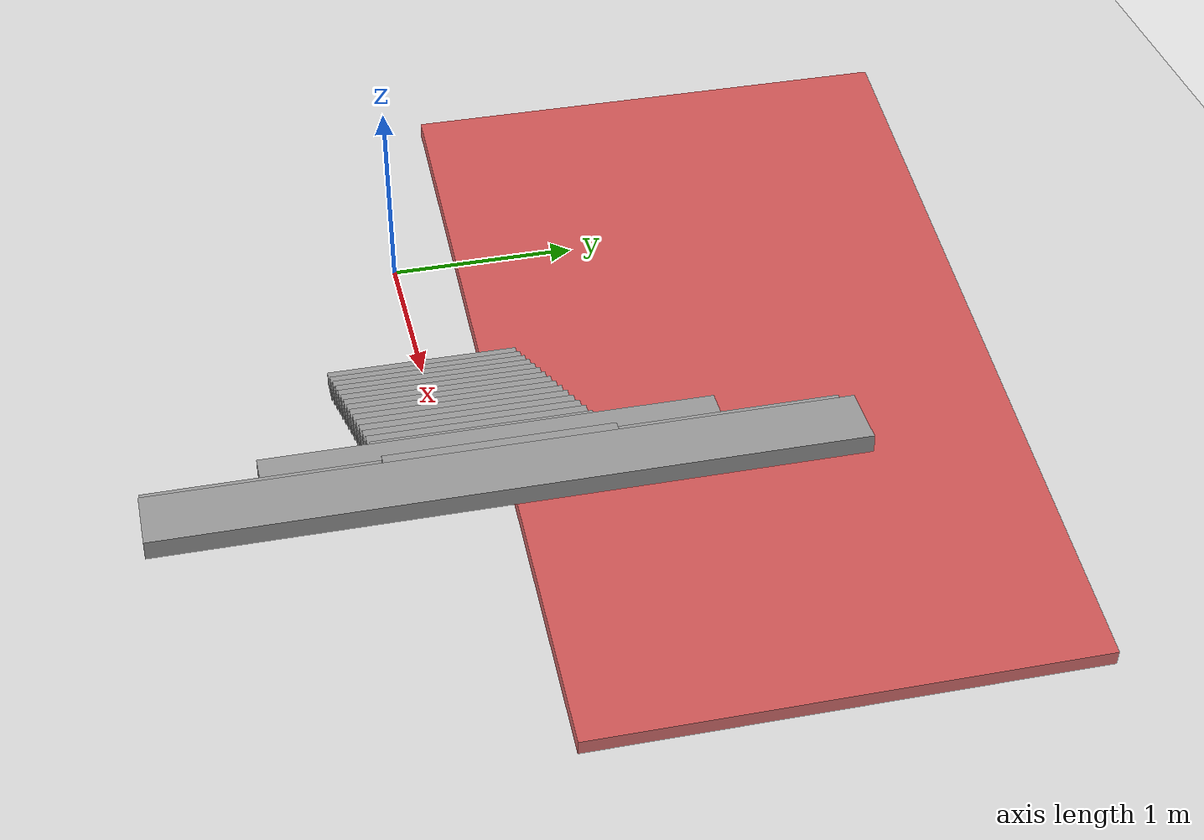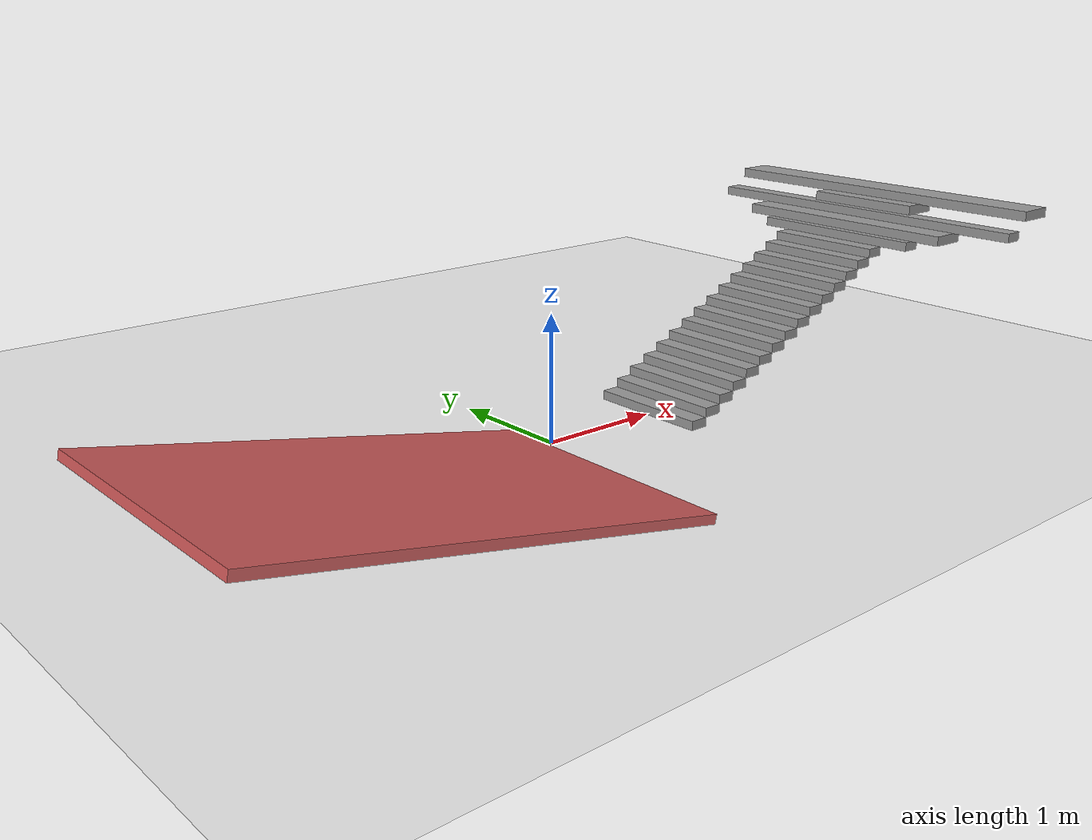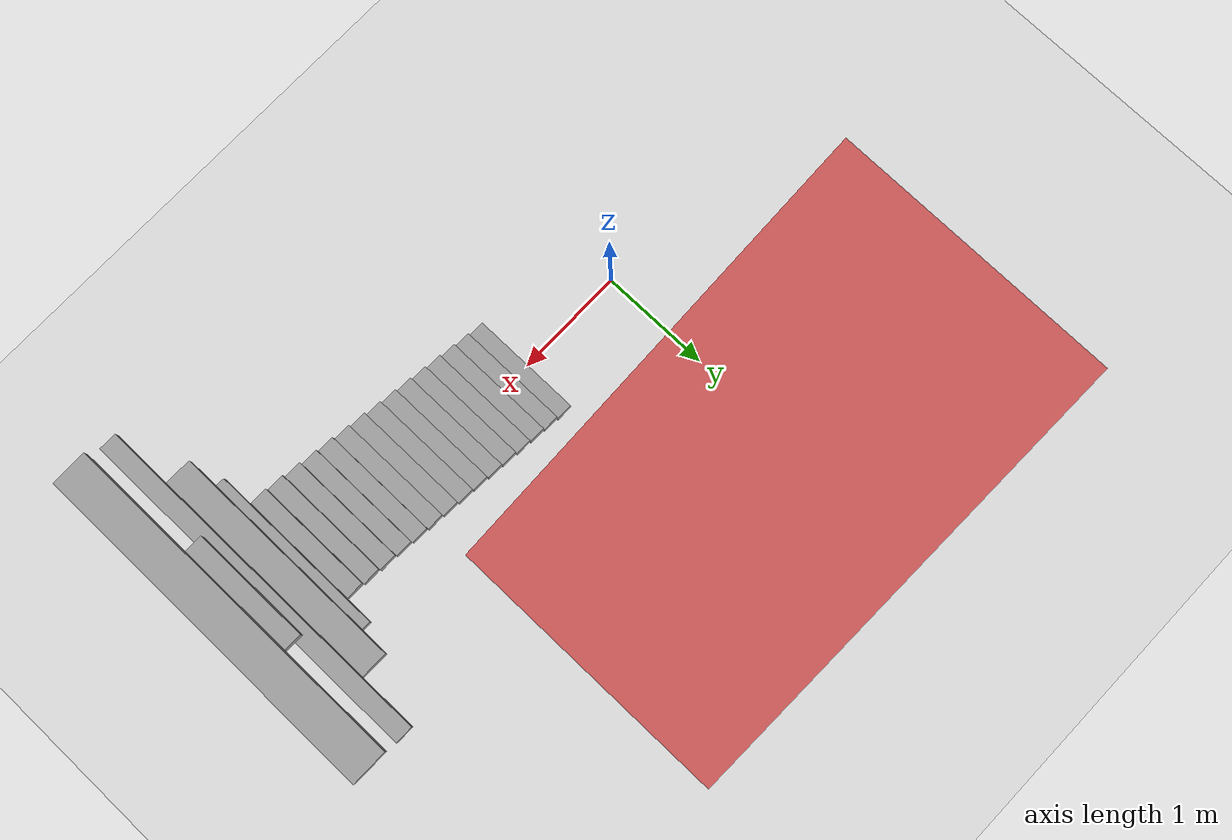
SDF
<sdf version="1.7">
 <world name="default">
  <light name="sun" type="directional">
   <pose>0 0 10 0 -0 0</pose>
   <diffuse>0.8 0.8 0.8 1</diffuse>
   <specular>0.2 0.2 0.2 1</specular>
   <attenuation>
    <range>1000</range>
    <constant>0.9</constant>
    <linear>0.01</linear>
    <quadratic>0.001</quadratic>
   </attenuation>
   <direction>-0.5 0.1 -0.9</direction>
   <spot><inner_angle>0</inner_angle><outer_angle>0</outer_angle><falloff>0</falloff></spot>
  </light>
  <model name="ground_plane">
   <static>1</static>
   <link name="link">
    <collision name="collision">
     <geometry><plane><normal>0 0 1</normal><size>100 100</size></plane></geometry>
     <surface>
      <contact><collide_bitmask>65535</collide_bitmask></contact>
      <friction><ode><mu>100</mu><mu2>50</mu2></ode></friction>
     </surface>
    </collision>
    <visual name="visual">
     <cast_shadows>0</cast_shadows>
     <geometry><plane><normal>0 0 1</normal><size>100 100</size></plane></geometry>
     <material>
      <script><uri>file://media/materials/scripts/gazebo.material</uri><name>Gazebo/Grey</name></script>
     </material>
    </visual>
   </link>
  </model>
  <gravity>0 0 -9.8</gravity>
  <magnetic_field>6e-06 2.3e-05 -4.2e-05</magnetic_field>
  <atmosphere type="adiabatic"/>
  <physics type="ode">
   <max_step_size>0.001</max_step_size>
   <real_time_factor>1</real_time_factor>
   <real_time_update_rate>1000</real_time_update_rate>
  </physics>
  <scene><ambient>0.4 0.4 0.4 1</ambient><background>0.7 0.7 0.7 1</background><shadows>1</shadows></scene>
  <spherical_coordinates>
   <surface_model>EARTH_WGS84</surface_model>
   <latitude_deg>0</latitude_deg>
   <longitude_deg>0</longitude_deg>
   <elevation>0</elevation>
   <heading_deg>0</heading_deg>
  </spherical_coordinates>
  <model name="stairs_7.5x15">
   <pose>2.5 -0 0 0 -0 0</pose>
   <link name="Stairs_1">
    <visual name="Stairs_1_Visual_0">
     <pose>-1.425 -0 0.0375 0 -0 1.5708</pose>
     <geometry><box><size>1 0.15 0.075</size></box></geometry>
     <material>
      <script><uri>file://media/materials/scripts/gazebo.material</uri><name>Gazebo/Grey</name></script>
      <ambient>1 1 1 1</ambient>
     </material>
     <meta><layer>0</layer></meta>
    </visual>
    <collision name="Stairs_1_Collision_0">
     <geometry><box><size>1 0.15 0.075</size></box></geometry>
     <pose>-1.425 -0 0.0375 0 -0 1.5708</pose>
    </collision>
    <visual name="Stairs_1_Visual_1">
     <pose>-1.275 -0 0.1125 0 -0 1.5708</pose>
     <geometry><box><size>1 0.15 0.075</size></box></geometry>
     <material>
      <script><uri>file://media/materials/scripts/gazebo.material</uri><name>Gazebo/Grey</name></script>
      <ambient>1 1 1 1</ambient>
     </material>
     <meta><layer>0</layer></meta>
    </visual>
    <collision name="Stairs_1_Collision_1">
     <geometry><box><size>1 0.15 0.075</size></box></geometry>
     <pose>-1.275 -0 0.1125 0 -0 1.5708</pose>
    </collision>
    <visual name="Stairs_1_Visual_2">
     <pose>-1.125 -0 0.1875 0 -0 1.5708</pose>
     <geometry><box><size>1 0.15 0.075</size></box></geometry>
     <material>
      <script><uri>file://media/materials/scripts/gazebo.material</uri><name>Gazebo/Grey</name></script>
      <ambient>1 1 1 1</ambient>
     </material>
     <meta><layer>0</layer></meta>
    </visual>
    <collision name="Stairs_1_Collision_2">
     <geometry><box><size>1 0.15 0.075</size></box></geometry>
     <pose>-1.125 -0 0.1875 0 -0 1.5708</pose>
    </collision>
    <visual name="Stairs_1_Visual_3">
     <pose>-0.975 -0 0.2625 0 -0 1.5708</pose>
     <geometry><box><size>1 0.15 0.075</size></box></geometry>
     <material>
      <script><uri>file://media/materials/scripts/gazebo.material</uri><name>Gazebo/Grey</name></script>
      <ambient>1 1 1 1</ambient>
     </material>
     <meta><layer>0</layer></meta>
    </visual>
    <collision name="Stairs_1_Collision_3">
     <geometry><box><size>1 0.15 0.075</size></box></geometry>
     <pose>-0.975 -0 0.2625 0 -0 1.5708</pose>
    </collision>
    <visual name="Stairs_1_Visual_4">
     <pose>-0.825 -0 0.3375 0 -0 1.5708</pose>
     <geometry><box><size>1 0.15 0.075</size></box></geometry>
     <material>
      <script><uri>file://media/materials/scripts/gazebo.material</uri><name>Gazebo/Grey</name></script>
      <ambient>1 1 1 1</ambient>
     </material>
     <meta><layer>0</layer></meta>
    </visual>
    <collision name="Stairs_1_Collision_4">
     <geometry><box><size>1 0.15 0.075</size></box></geometry>
     <pose>-0.825 -0 0.3375 0 -0 1.5708</pose>
    </collision>
    <visual name="Stairs_1_Visual_5">
     <pose>-0.675 -0 0.4125 0 -0 1.5708</pose>
     <geometry><box><size>1 0.15 0.075</size></box></geometry>
     <material>
      <script><uri>file://media/materials/scripts/gazebo.material</uri><name>Gazebo/Grey</name></script>
      <ambient>1 1 1 1</ambient>
     </material>
     <meta><layer>0</layer></meta>
    </visual>
    <collision name="Stairs_1_Collision_5">
     <geometry><box><size>1 0.15 0.075</size></box></geometry>
     <pose>-0.675 -0 0.4125 0 -0 1.5708</pose>
    </collision>
    <visual name="Stairs_1_Visual_6">
     <pose>-0.525 -0 0.4875 0 -0 1.5708</pose>
     <geometry><box><size>1 0.15 0.075</size></box></geometry>
     <material>
      <script><uri>file://media/materials/scripts/gazebo.material</uri><name>Gazebo/Grey</name></script>
      <ambient>1 1 1 1</ambient>
     </material>
     <meta><layer>0</layer></meta>
    </visual>
    <collision name="Stairs_1_Collision_6">
     <geometry><box><size>1 0.15 0.075</size></box></geometry>
     <pose>-0.525 -0 0.4875 0 -0 1.5708</pose>
    </collision>
    <visual name="Stairs_1_Visual_7">
     <pose>-0.375 -0 0.5625 0 -0 1.5708</pose>
     <geometry><box><size>1 0.15 0.075</size></box></geometry>
     <material>
      <script><uri>file://media/materials/scripts/gazebo.material</uri><name>Gazebo/Grey</name></script>
      <ambient>1 1 1 1</ambient>
     </material>
     <meta><layer>0</layer></meta>
    </visual>
    <collision name="Stairs_1_Collision_7">
     <geometry><box><size>1 0.15 0.075</size></box></geometry>
     <pose>-0.375 -0 0.5625 0 -0 1.5708</pose>
    </collision>
    <visual name="Stairs_1_Visual_8">
     <pose>-0.225 -0 0.6375 0 -0 1.5708</pose>
     <geometry><box><size>1 0.15 0.075</size></box></geometry>
     <material>
      <script><uri>file://media/materials/scripts/gazebo.material</uri><name>Gazebo/Grey</name></script>
      <ambient>1 1 1 1</ambient>
     </material>
     <meta><layer>0</layer></meta>
    </visual>
    <collision name="Stairs_1_Collision_8">
     <geometry><box><size>1 0.15 0.075</size></box></geometry>
     <pose>-0.225 -0 0.6375 0 -0 1.5708</pose>
    </collision>
    <visual name="Stairs_1_Visual_9">
     <pose>-0.075 -0 0.7125 0 -0 1.5708</pose>
     <geometry><box><size>1 0.15 0.075</size></box></geometry>
     <material>
      <script><uri>file://media/materials/scripts/gazebo.material</uri><name>Gazebo/Grey</name></script>
      <ambient>1 1 1 1</ambient>
     </material>
     <meta><layer>0</layer></meta>
    </visual>
    <collision name="Stairs_1_Collision_9">
     <geometry><box><size>1 0.15 0.075</size></box></geometry>
     <pose>-0.075 -0 0.7125 0 -0 1.5708</pose>
    </collision>
    <visual name="Stairs_1_Visual_10">
     <pose>0.075 0 0.7875 0 -0 1.5708</pose>
     <geometry><box><size>1 0.15 0.075</size></box></geometry>
     <material>
      <script><uri>file://media/materials/scripts/gazebo.material</uri><name>Gazebo/Grey</name></script>
      <ambient>1 1 1 1</ambient>
     </material>
     <meta><layer>0</layer></meta>
    </visual>
    <collision name="Stairs_1_Collision_10">
     <geometry><box><size>1 0.15 0.075</size></box></geometry>
     <pose>0.075 0 0.7875 0 -0 1.5708</pose>
    </collision>
    <visual name="Stairs_1_Visual_11">
     <pose>0.225 0 0.8625 0 -0 1.5708</pose>
     <geometry><box><size>1 0.15 0.075</size></box></geometry>
     <material>
      <script><uri>file://media/materials/scripts/gazebo.material</uri><name>Gazebo/Grey</name></script>
      <ambient>1 1 1 1</ambient>
     </material>
     <meta><layer>0</layer></meta>
    </visual>
    <collision name="Stairs_1_Collision_11">
     <geometry><box><size>1 0.15 0.075</size></box></geometry>
     <pose>0.225 0 0.8625 0 -0 1.5708</pose>
    </collision>
    <visual name="Stairs_1_Visual_12">
     <pose>0.375 0 0.9375 0 -0 1.5708</pose>
     <geometry><box><size>1 0.15 0.075</size></box></geometry>
     <material>
      <script><uri>file://media/materials/scripts/gazebo.material</uri><name>Gazebo/Grey</name></script>
      <ambient>1 1 1 1</ambient>
     </material>
     <meta><layer>0</layer></meta>
    </visual>
    <collision name="Stairs_1_Collision_12">
     <geometry><box><size>1 0.15 0.075</size></box></geometry>
     <pose>0.375 0 0.9375 0 -0 1.5708</pose>
    </collision>
    <visual name="Stairs_1_Visual_13">
     <pose>0.525 0 1.0125 0 -0 1.5708</pose>
     <geometry><box><size>1 0.15 0.075</size></box></geometry>
     <material>
      <script><uri>file://media/materials/scripts/gazebo.material</uri><name>Gazebo/Grey</name></script>
      <ambient>1 1 1 1</ambient>
     </material>
     <meta><layer>0</layer></meta>
    </visual>
    <collision name="Stairs_1_Collision_13">
     <geometry><box><size>1 0.15 0.075</size></box></geometry>
     <pose>0.525 0 1.0125 0 -0 1.5708</pose>
    </collision>
    <visual name="Stairs_1_Visual_14">
     <pose>0.675 0 1.0875 0 -0 1.5708</pose>
     <geometry><box><size>1 0.15 0.075</size></box></geometry>
     <material>
      <script><uri>file://media/materials/scripts/gazebo.material</uri><name>Gazebo/Grey</name></script>
      <ambient>1 1 1 1</ambient>
     </material>
     <meta><layer>0</layer></meta>
    </visual>
    <collision name="Stairs_1_Collision_14">
     <geometry><box><size>1 0.15 0.075</size></box></geometry>
     <pose>0.675 0 1.0875 0 -0 1.5708</pose>
    </collision>
    <visual name="Stairs_1_Visual_15">
     <pose>0.825 0 1.1625 0 -0 1.5708</pose>
     <geometry><box><size>1.5 0.15 0.075</size></box></geometry>
     <material>
      <script><uri>file://media/materials/scripts/gazebo.material</uri><name>Gazebo/Grey</name></script>
      <ambient>1 1 1 1</ambient>
     </material>
     <meta><layer>0</layer></meta>
    </visual>
    <collision name="Stairs_1_Collision_15">
     <geometry><box><size>1.5 0.15 0.075</size></box></geometry>
     <pose>0.825 0 1.1625 0 -0 1.5708</pose>
    </collision>
    <visual name="Stairs_1_Visual_16">
     <pose>0.975 0 1.2375 0 -0 1.5708</pose>
     <geometry><box><size>2 0.30 0.08</size></box></geometry>
     <material>
      <script><uri>file://media/materials/scripts/gazebo.material</uri><name>Gazebo/Grey</name></script>
      <ambient>1 1 1 1</ambient>
     </material>
     <meta><layer>0</layer></meta>
    </visual>
    <collision name="Stairs_1_Collision_16">
     <geometry><box><size>2 0.30 0.08</size></box></geometry>
     <pose>0.975 0 1.2375 0 -0 1.5708</pose>
    </collision>
    <visual name="Stairs_1_Visual_17">
     <pose>1.125 0 1.3125 0 -0 1.5708</pose>
     <geometry><box><size>3 0.15 0.075</size></box></geometry>
     <material>
      <script><uri>file://media/materials/scripts/gazebo.material</uri><name>Gazebo/Grey</name></script>
      <ambient>1 1 1 1</ambient>
     </material>
     <meta><layer>0</layer></meta>
    </visual>
    <collision name="Stairs_1_Collision_17">
     <geometry><box><size>3 0.15 0.075</size></box></geometry>
     <pose>1.125 0 1.3125 0 -0 1.5708</pose>
    </collision>
    <visual name="Stairs_1_Visual_18">
     <pose>1.275 0 1.3875 0 -0 1.5708</pose>
     <geometry><box><size>1 0.30 0.08</size></box></geometry>
     <material>
      <script><uri>file://media/materials/scripts/gazebo.material</uri><name>Gazebo/Grey</name></script>
      <ambient>1 1 1 1</ambient>
     </material>
     <meta><layer>0</layer></meta>
    </visual>
    <collision name="Stairs_1_Collision_18">
     <geometry><box><size>1 0.30 0.08</size></box></geometry>
     <pose>1.275 0 1.3875 0 -0 1.5708</pose>
    </collision>
    <visual name="Stairs_1_Visual_19">
     <pose>1.425 0 1.4625 0 -0 1.5708</pose>
     <geometry><box><size>3 0.30 0.08</size></box></geometry>
     <material>
      <script><uri>file://media/materials/scripts/gazebo.material</uri><name>Gazebo/Grey</name></script>
      <ambient>1 1 1 1</ambient>
     </material>
     <meta><layer>0</layer></meta>
    </visual>
    <collision name="Stairs_1_Collision_19">
     <geometry><box><size>3 0.30 0.08</size></box></geometry>
     <pose>1.425 0 1.4625 0 -0 1.5708</pose>
    </collision>
   </link>
   <static>1</static>
  </model>
  <model name="ramp">
   <static>true</static>
   <pose>0 2 -1 0 0.2 0</pose>
   <link name="link">
    <collision name="collision"><geometry><box><size>5 3 0.1</size></box></geometry></collision>
    <visual name="visual">
     <geometry><box><size>5 3 0.1</size></box></geometry>
     <material>
      <script><uri>file://media/materials/scripts/gazebo.material</uri><name>Gazebo/Red</name></script>
     </material>
    </visual>
   </link>
  </model>
 </world>
</sdf>
